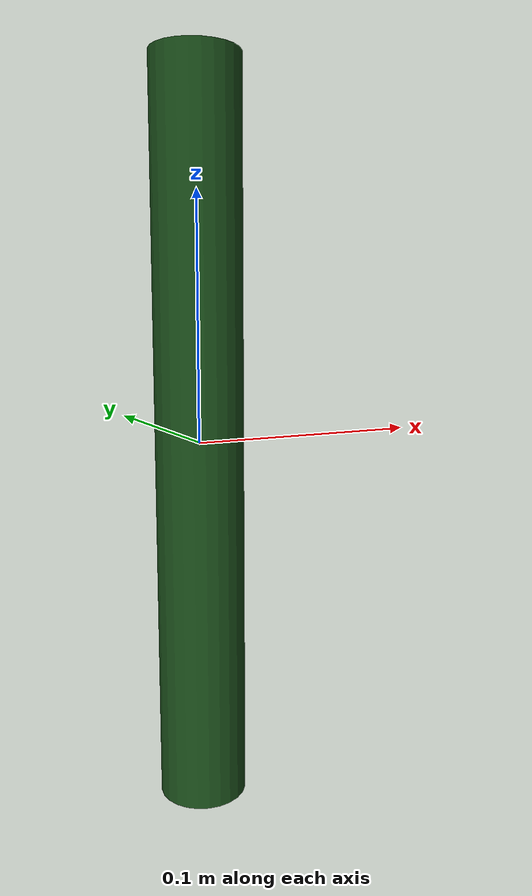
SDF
<?xml version="1.0" ?>
<sdf version="1.5">
  <model name="wine_bottle">
    <link name="link">
      <inertial>
        <mass>0.800</mass>
        <!-- cylinder: r=0.018m, h=0.300m -->
        <inertia>
          <ixx>0.006012</ixx><ixy>0</ixy><ixz>0</ixz>
          <iyy>0.006012</iyy><iyz>0</iyz><izz>0.000130</izz>
        </inertia>
      </inertial>
      <collision name="collision">
        <geometry><cylinder><radius>0.018</radius><length>0.300</length></cylinder></geometry>
              <surface>
          <friction>
            <ode>
              <mu>0.5</mu>
              <mu2>0.5</mu2>
            </ode>
            <torsional>
              <coefficient>0.5</coefficient>
              <surface_radius>0.01</surface_radius>
            </torsional>
          </friction>
          <contact>
            <ode>
              <kp>1e6</kp>
              <kd>50</kd>
              <min_depth>0.001</min_depth>
              <max_vel>0.01</max_vel>
            </ode>
          </contact>
        </surface>
      </collision>
      <visual name="visual">
        <geometry><cylinder><radius>0.018</radius><length>0.300</length></cylinder></geometry>
        <material>
          <ambient>0.1 0.3 0.1 1</ambient><diffuse>0.1 0.3 0.1 1</diffuse>
        </material>
      </visual>
    </link>
  </model>
</sdf>
